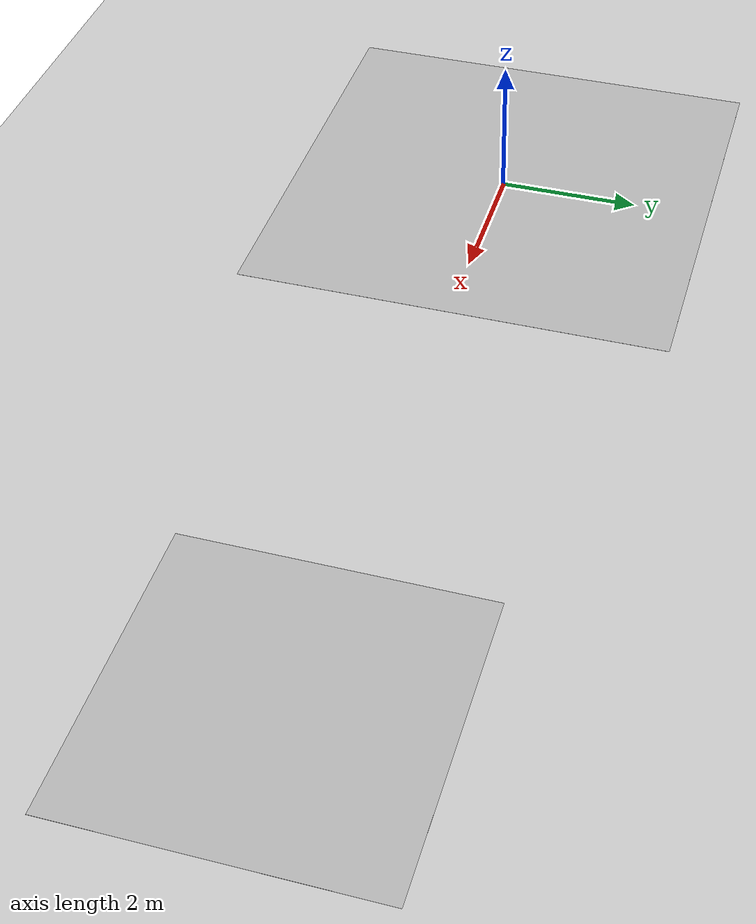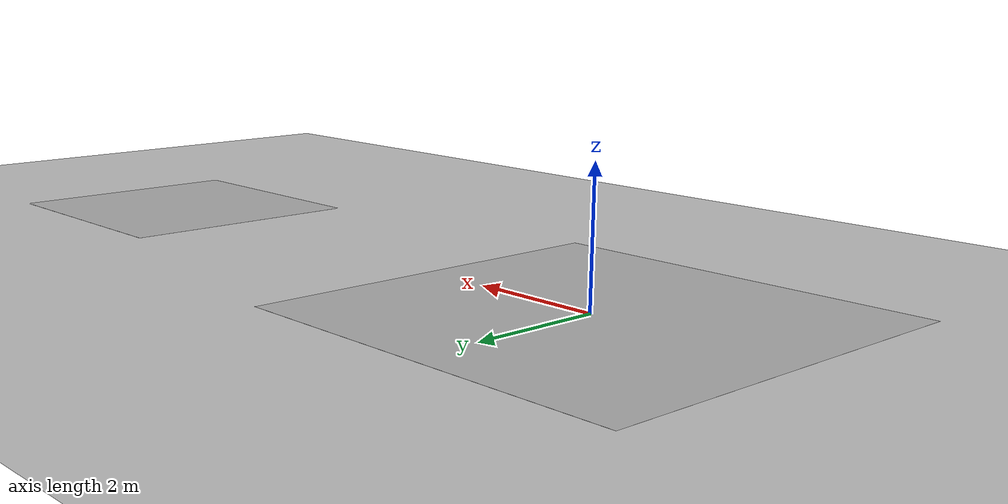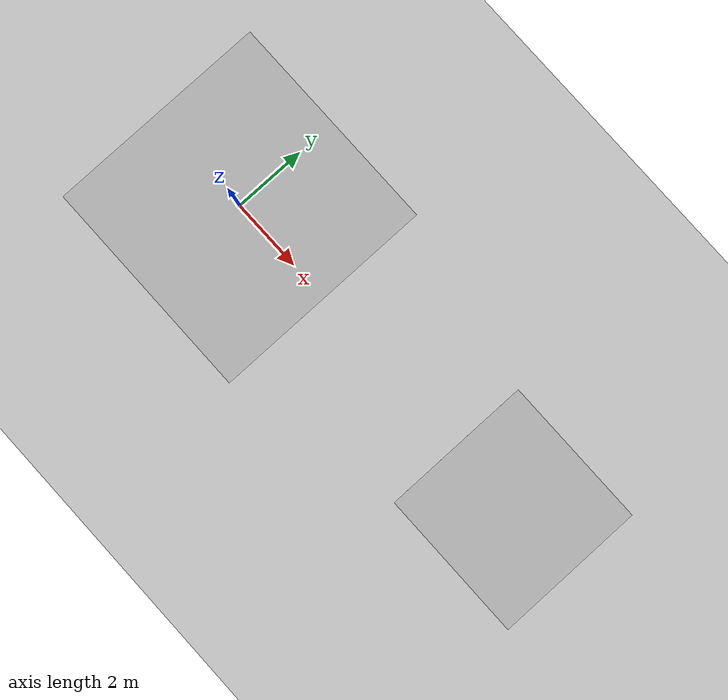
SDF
<?xml version="1.0" ?>
<sdf version="1.4">
  <world name="default">
    <physics type='ode'>
      <ode>
        <solver>
          <type>quick</type>
          <iters>1000</iters>
          <sor>1.3</sor>
        </solver>
        <constraints>
          <cfm>0</cfm>
          <erp>0.2</erp>
          <contact_max_correcting_vel>100</contact_max_correcting_vel>
          <contact_surface_layer>0.001</contact_surface_layer>
        </constraints>
      </ode>
      <max_step_size>0.01</max_step_size>
      <real_time_factor>1</real_time_factor>
      <real_time_update_rate>100</real_time_update_rate>
      <gravity>0 0 -9.8</gravity>
    </physics>

    <!-- Only one ROS interface plugin is required per world, as any other plugin can connect a Gazebo
         topic to a ROS topic (or vise versa). -->
    <plugin name="ros_interface_plugin" filename="librotors_gazebo_ros_interface_plugin.so"/>

    <spherical_coordinates>
      <surface_model>EARTH_WGS84</surface_model>
      <latitude_deg>47.3667</latitude_deg>
      <longitude_deg>8.5500</longitude_deg>
      <elevation>500.0</elevation>
      <heading_deg>0</heading_deg>
    </spherical_coordinates>

    <!-- A global light source -->
    <include>
      <uri>model://sun</uri>
    </include>
    <!-- A ground plane -->
    <include>
      <uri>model://ground_plane</uri>
    </include>
    <!-- AR marker 0 -->
    <include>
      <uri>model://marker0_50cm_massless</uri>
      <pose>0 0 0.01 0 0 0</pose>
    </include>
    <!-- AR marker 1 -->
    <include>
      <uri>model://marker1_50cm_massless</uri>
      <pose>10 0 0.01 0 0 0</pose>
    </include>
    <!-- Add a light on top of the marker 0 -->
    <light name="marker_light_0" type="point">
      <cast_shadows>1</cast_shadows>
      <pose>0.2 0 1.8 0 0 0</pose>
      <diffuse>0.800000 0.800000 0.800000 1.000000</diffuse>
      <specular>0.100000 0.100000 0.100000 1.000000</specular>
      <attenuation>
        <range>1000.000000</range>
        <constant>0.900000</constant>
        <linear>0.010000</linear>
        <quadratic>0.001000</quadratic>
      </attenuation>
    </light>
    <!-- Add a light on top of the marker 1 -->
    <light name="marker_light_1" type="point">
      <cast_shadows>1</cast_shadows>
      <pose>10.2 0 1.8 0 0 0</pose>
      <diffuse>0.800000 0.800000 0.800000 1.000000</diffuse>
      <specular>0.100000 0.100000 0.100000 1.000000</specular>
      <attenuation>
        <range>1000.000000</range>
        <constant>0.900000</constant>
        <linear>0.010000</linear>
        <quadratic>0.001000</quadratic>
      </attenuation>
    </light>
  </world>
</sdf>

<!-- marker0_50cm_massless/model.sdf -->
<sdf version='1.4'>
  <model name='marker0_50cm_massless'>
    <static>1</static>
    <link name="marker0">
      <gravity>false</gravity>
      <visual name="visual">
        <geometry>
          <box>
            <size>6.2 6.2 0.001</size>
          </box>
        </geometry>
        <material>
          <script>
      <uri>model://marker0_50cm_massless/materials/scripts</uri>
      <uri>model://marker0_50cm_massless/materials/textures</uri>
            <name>Aruco/marker0_50cm</name>
          </script>
        </material>
      </visual>
      <collision name="collision">
        <geometry>
          <box>
            <size>6.2 6.2 0.02</size>
          </box>
        </geometry>
      </collision>
    </link>
  </model>
</sdf>

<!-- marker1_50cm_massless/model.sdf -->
<sdf version='1.4'>
  <model name='marker1_50cm_massless'>
    <static>1</static>
    <link name="marker1">
      <gravity>false</gravity>
      <visual name="visual">
        <geometry>
          <box>
            <size>4.1 4.1 0.001</size>
          </box>
        </geometry>
        <material>
          <script>
      <uri>model://marker1_50cm_massless/materials/scripts</uri>
      <uri>model://marker1_50cm_massless/materials/textures</uri>
            <name>Aruco/marker1_50cm</name>
          </script>
        </material>
      </visual>
      <collision name="collision">
        <geometry>
          <box>
            <size>4.1 4.1 0.02</size>
          </box>
        </geometry>
      </collision>
    </link>
  </model>
</sdf>
